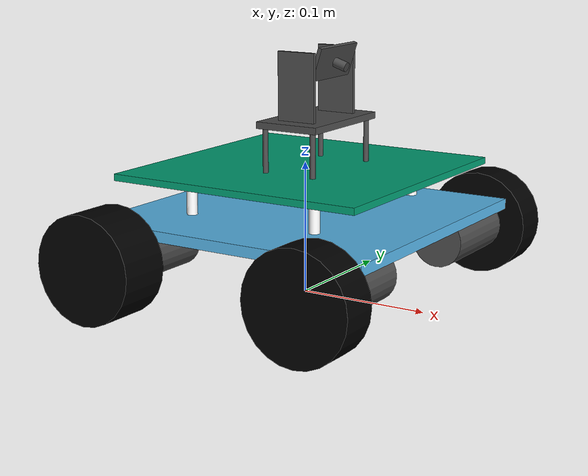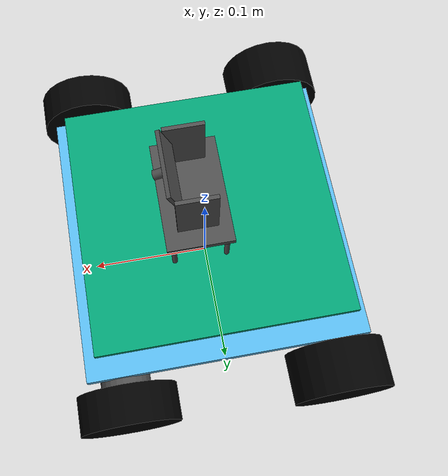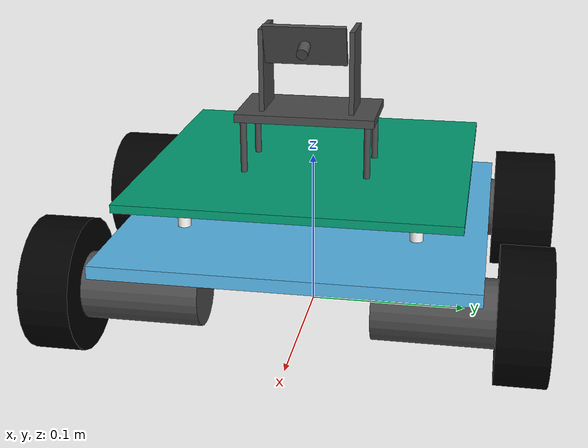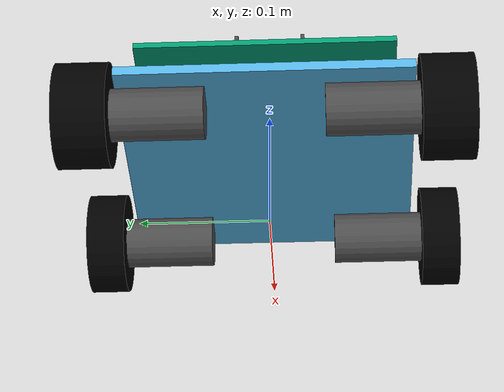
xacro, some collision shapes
<?xml version="1.0"?>
<robot xmlns:xacro="http://www.ros.org/wiki/xacro" name="roberto" >

    <xacro:arg name="model_dir" default="$(find roberto_models_kinetic)/models/platform"/>

    <!-- Import colors (for Rviz)-->
    <xacro:include filename="$(find roberto_models_kinetic)/models/materials.xacro" />

    <!-- Import robot -->
    <xacro:property name="model_dir" value="$(arg model_dir)/roberto_body"/>
    <xacro:include filename="$(find roberto_models_kinetic)/models/platform/roberto_body/body.xacro"/>
    <xacro:RobertoBody name="body" parent="base" mesh_collis="simplified" mesh_visual="detailed"/>   <!-- simplified detailed empty-->

    <!-- Import platform plugins -->
    <xacro:include filename="$(find roberto_models_kinetic)/models/platform/roberto_plugins.gazebo" />
    <xacro:RobertoMotorDrivePlugin />

    <!-- IMU -->
    <xacro:property name="model_dir" value="$(find roberto_models_kinetic)/models/sensors/IMU"/>
    <xacro:include filename="$(find roberto_models_kinetic)/models/sensors/IMU/imu.xacro"/>
    <xacro:imu_sensor name="imu9dof" parent="body_link" xyz="0.0 0.0 0.0685" rpy="0 0 0"/>

    <!-- Camera -->
    <xacro:include filename="$(find roberto_models_kinetic)/models/sensors/camera/camera.xacro"/>
    <xacro:cam name="usb_cam" parent="body_top" angle="${M_PI/10}" xyz="0 0.01 0.0375" rpy="0 0 ${M_PI/2}"/>

</robot>

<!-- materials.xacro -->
<robot>
	<material name="black">
	  <color rgba="0.0 0.0 0.0 1.0"/>
	</material>

	<material name="blue">
	  <color rgba="0.0 0.0 0.8 1.0"/>
	</material>

	<material name="green">
	  <color rgba="0.0 0.8 0.0 1.0"/>
	</material>

	<material name="grey">
	  <color rgba="0.3 0.3 0.3 1.0"/>
	</material>

	<material name="orange">
	  <color rgba="${255/255} ${108/255} ${10/255} 1.0"/>
	</material>

	<material name="brown">
	  <color rgba="${222/255} ${207/255} ${195/255} 1.0"/>
	</material>

	<material name="red">
	  <color rgba="0.8 0.0 0.0 1.0"/>
	</material>

	<material name="white">
	  <color rgba="1.0 1.0 1.0 1.0"/>
	</material>
</robot>

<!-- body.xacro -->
<robot xmlns:xacro="http://www.ros.org/wiki/xacro">

	<xacro:include filename="parameters.xacro"/>

	<xacro:include filename="platform_bottom.xacro"/>
	<xacro:include filename="platform_top.xacro"/>
	<xacro:include filename="wheel_mount.xacro"/>
	<xacro:include filename="wheel.xacro"/>
	<xacro:include filename="spacer.xacro"/>

	<xacro:macro name="RobertoBody" params="name parent mesh_collis mesh_visual" >

		<!-- Base link -->
		<link name="${parent}_link" />

		<!-- Chassis -->
	    <xacro:RobertoPlatformBottom name="${name}" parent="${parent}"/>
	    <xacro:RobertoPlatformTop name="${name}_top" parent="${name}"/>

	    <!-- Visual spacers in chassis -->
	    <xacro:Spacer name="spacer" parent="${name}" fb="F" lr="L" />
		<xacro:Spacer name="spacer" parent="${name}" fb="F" lr="R" />
		<xacro:Spacer name="spacer" parent="${name}" fb="B" lr="L" />
		<xacro:Spacer name="spacer" parent="${name}" fb="B" lr="R" />

	    <!-- Motor mounts, servos and gears -->
	    <xacro:WheelMount name="mount" parent="${name}" fb="B" lr="R" />
		<xacro:WheelMount name="mount" parent="${name}" fb="B" lr="L" />
		<xacro:WheelMount name="mount" parent="${name}" fb="F" lr="L" />
		<xacro:WheelMount name="mount" parent="${name}" fb="F" lr="R" />

		<!-- Wheels and motors -->
		<xacro:Wheel name="wheel" parent="mount" fb="F" lr="L" />
		<xacro:Wheel name="wheel" parent="mount" fb="F" lr="R" />
		<xacro:Wheel name="wheel" parent="mount" fb="B" lr="L" />
		<xacro:Wheel name="wheel" parent="mount" fb="B" lr="R" />

	</xacro:macro>
</robot>

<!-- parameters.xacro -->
<robot xmlns:xacro="http://www.ros.org/wiki/xacro">

	<xacro:property name="platformHeight" value="0.008"/>
	<xacro:property name="platformLength" value="0.225"/>
	<xacro:property name="platformWidth" value="0.225"/>
	<xacro:property name="platformMass" value="0.200"/>

	<xacro:property name="platformTopHeight" value="0.005"/>
	<xacro:property name="platformTopLength" value="0.200"/>
	<xacro:property name="platformTopWidth" value="0.200"/>
	<xacro:property name="platformTopMass" value="0.125"/>

	<xacro:property name="wheelRadius" value="0.04"/>
	<xacro:property name="wheelPos" value="0.05"/>

	<xacro:property name="frontWheelWidth" value="0.03"/>
	<xacro:property name="frontWheelMass" value="0.045"/>

	<xacro:property name="rearWheelWidth" value="0.04"/>
	<xacro:property name="rearWheelMass" value="0.050"/>

	<xacro:property name="motorMountRadius" value="0.02"/>
	<xacro:property name="motorMountLength" value="0.07"/>
	<xacro:property name="motorMountMass" value="0.190"/>
	<xacro:property name="motorMountPos" value="0.085"/>

	<xacro:property name="spacerRadius" value="0.004"/>
	<xacro:property name="spacerLength" value="0.022"/>
	<xacro:property name="spacerMass" value="0.005"/>
	<xacro:property name="spacerPosX" value="0.071"/>
	<xacro:property name="spacerPosY" value="0.052"/>
	<xacro:property name="spacerPosZ" value="0.079"/>

	<xacro:property name="cameraSize" value="0.05"/>
	<xacro:property name="cameraMass" value="0.100"/>

	<xacro:property name="servoLowerLimit" value="0.2618" />
    <xacro:property name="servoUpperLimit" value="1.57" />

</robot>

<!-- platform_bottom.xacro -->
<robot xmlns:xacro="http://www.ros.org/wiki/xacro">

	<xacro:include filename="$(find roberto_models_jade)/models/inertia_tensors.xacro"/>

	<xacro:macro name="RobertoPlatformBottom" params="name parent mesh_collis:=^|simplified mesh_visual:=^|detailed model_dir:=^">

		<xacro:property name="ParentLink2ThisLink"> <!--parent link to this joint tf-->
			<origin xyz="0 0 0" rpy="0 0 -${M_PI/2}"/>
	    </xacro:property>

	    <xacro:property name="ThisLink2Inert"> <!--this link 2 inertial center tf, mass data-->
			<box_inertial x="${platformLength}" y="${platformWidth}"  z="${platformHeight}" mass="${platformMass}" />
	    </xacro:property>

	    <xacro:property name="ThisLink2STL"> <!--this link 2 mesh center tf, file-->
			<origin xyz="${-platformLength/2} ${-platformWidth/2} 0.06" rpy="0 0 0"/>
			<geometry> <mesh filename="file://${model_dir}/meshes/platform.dae"/> </geometry>
	    </xacro:property>

	    <xacro:property name="ThisLink2XML"> <!--this link 2 simple mesh center tf, file-->
			<origin xyz="0 0 0.06" rpy="0 0 0"/>
			<geometry> <box size="${platformLength} ${platformWidth} ${platformHeight}" /> </geometry>
	    </xacro:property>

	    <!-- choosing the appropriate collision and visual mesh -->
	    <xacro:property name="ThisVisual"> <box size="0.0001 0.0001 0.0001" /> </xacro:property><!--no mesh-->
	    <xacro:property name="ThisCollis"> <box size="0.0001 0.0001 0.0001" /> </xacro:property><!--no mesh-->
	    <xacro:if value="${mesh_visual ==   'detailed'}"> <xacro:property name="ThisVisual">  <xacro:insert_block name="ThisLink2STL"/> </xacro:property> </xacro:if><!--detailed stl mesh-->
	    <xacro:if value="${mesh_collis ==   'detailed'}"> <xacro:property name="ThisCollis">  <xacro:insert_block name="ThisLink2STL"/> </xacro:property> </xacro:if><!--detailed stl mesh-->
	    <xacro:if value="${mesh_visual == 'simplified'}"> <xacro:property name="ThisVisual">  <xacro:insert_block name="ThisLink2XML"/> </xacro:property> </xacro:if><!--minimalist mesh-->
	    <xacro:if value="${mesh_collis == 'simplified'}"> <xacro:property name="ThisCollis">  <xacro:insert_block name="ThisLink2XML"/> </xacro:property> </xacro:if><!--minimalist mesh-->

	    <!-- joint and link definition -->
	    <joint name="${parent}2${name}_joint" type="fixed">
			<parent link="${parent}_link"/>
			<child  link="${name}_link" />
			<xacro:insert_block name="ParentLink2ThisLink" />
	    </joint>

	    <link name="${name}_link">
			<xacro:insert_block name="ThisLink2Inert"/>
			<visual>    <xacro:insert_block name="ThisVisual"/> </visual>
			<collision> <xacro:insert_block name="ThisCollis"/> </collision>
	    </link>

	    <gazebo reference="${name}_link">
	    </gazebo>

	</xacro:macro>
</robot>

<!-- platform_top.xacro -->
<robot xmlns:xacro="http://www.ros.org/wiki/xacro">

	<xacro:include filename="$(find roberto_models_jade)/models/inertia_tensors.xacro"/>

	<xacro:macro name="RobertoPlatformTop" params="name parent mesh_collis:=^|simplified mesh_visual:=^|detailed model_dir:=^">

		<xacro:property name="ParentLink2ThisLink"> <!--parent link to this joint tf-->
			<origin xyz="0 0 ${spacerLength+spacerPosZ-platformTopHeight-0.001}" rpy="0 0 0"/>
	    </xacro:property>

	    <xacro:property name="ThisLink2Inert"> <!--this link 2 inertial center tf, mass data-->
			<box_inertial x="${platformTopWidth}" y="${platformTopLength}"  z="${platformTopHeight}" mass="${platformTopMass}" />
	    </xacro:property>

	    <xacro:property name="ThisLink2STL"> <!--this link 2 mesh center tf, file-->
			<origin xyz="${platformTopWidth/2} -${platformTopLength/2} 0" rpy="0 ${pi} 0"/>
			<geometry> <mesh filename="file://${model_dir}/meshes/platform_top.dae"/> </geometry>
	    </xacro:property>

	    <xacro:property name="ThisLink2XML"> <!--this link 2 simple mesh center tf, file-->
			<origin xyz="0 0 0" rpy="0 ${pi} 0"/>
			<geometry> <box size="${platformTopWidth} ${platformTopLength} ${platformTopHeight}" /> </geometry>
	    </xacro:property>

	    <!-- choosing the appropriate collision and visual mesh -->
	    <xacro:property name="ThisVisual"> <box size="0.0001 0.0001 0.0001" /> </xacro:property><!--no mesh-->
	    <xacro:property name="ThisCollis"> <box size="0.0001 0.0001 0.0001" /> </xacro:property><!--no mesh-->
	    <xacro:if value="${mesh_visual ==   'detailed'}"> <xacro:property name="ThisVisual">  <xacro:insert_block name="ThisLink2STL"/> </xacro:property> </xacro:if><!--detailed stl mesh-->
	    <xacro:if value="${mesh_collis ==   'detailed'}"> <xacro:property name="ThisCollis">  <xacro:insert_block name="ThisLink2STL"/> </xacro:property> </xacro:if><!--detailed stl mesh-->
	    <xacro:if value="${mesh_visual == 'simplified'}"> <xacro:property name="ThisVisual">  <xacro:insert_block name="ThisLink2XML"/> </xacro:property> </xacro:if><!--minimalist mesh-->
	    <xacro:if value="${mesh_collis == 'simplified'}"> <xacro:property name="ThisCollis">  <xacro:insert_block name="ThisLink2XML"/> </xacro:property> </xacro:if><!--minimalist mesh-->

	    <!-- joint and link definition -->
	    <joint name="${parent}2${name}_joint" type="fixed">
			<parent link="${parent}_link"/>
			<child  link="${name}_link" />
			<xacro:insert_block name="ParentLink2ThisLink" />
	    </joint>

	    <link name="${name}_link">
			<xacro:insert_block name="ThisLink2Inert"/>
			<visual>    <xacro:insert_block name="ThisVisual"/> </visual>
			<collision> <xacro:insert_block name="ThisCollis"/> </collision>
	    </link>

	    <gazebo reference="${name}_link">
	    </gazebo>

	</xacro:macro>
</robot>

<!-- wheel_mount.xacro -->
<robot xmlns:xacro="http://www.ros.org/wiki/xacro">

  <xacro:include filename="$(find roberto_models_jade)/models/inertia_tensors.xacro"/>

  <xacro:macro name="WheelMount" params="name parent fb lr mesh_collis:=^|simplified mesh_visual:=^|detailed model_dir:=^">

    <!-- Selecting origin position -->
    <xacro:property name="adjust" value="0" />
    <xacro:property name="tX" value="1" />
    <xacro:property name="tY" value="1" />
    <xacro:if value="${lr == 'L'}"> <xacro:property name="tX" value="-1" /> </xacro:if>
    <xacro:if value="${fb == 'B'}"> <xacro:property name="tY" value="-1" /> <xacro:property name="adjust" value="0.01" /> </xacro:if>

    <!-- Select servo limits -->
    <xacro:property name="ll" value="${servoLowerLimit}"/>
    <xacro:property name="ul" value="${servoUpperLimit}"/>
    <xacro:if value="${fb == 'B' and lr == 'L'}"> <xacro:property name="ll" value="-${servoLowerLimit}" /> <xacro:property name="ul" value="${servoUpperLimit}" /> </xacro:if>
    <xacro:if value="${fb == 'B' and lr == 'R'}"> <xacro:property name="ll" value="-${servoUpperLimit}" /> <xacro:property name="ul" value="${servoLowerLimit}" /> </xacro:if>
    <xacro:if value="${fb == 'F' and lr == 'L'}"> <xacro:property name="ll" value="-${servoUpperLimit}" /> <xacro:property name="ul" value="${servoLowerLimit}" /> </xacro:if>
    <xacro:if value="${fb == 'F' and lr == 'R'}"> <xacro:property name="ll" value="-${servoLowerLimit}" /> <xacro:property name="ul" value="${servoUpperLimit}" /> </xacro:if>

    <xacro:property name="ParentLink2ThisLink"> <!--parent link to this joint tf-->
      <origin xyz="${motorMountPos*tX} ${motorMountPos*tY} ${wheelRadius}" rpy="0 0 0" />
      <axis xyz="0 0 1" rpy="0 0 0" />
      <limit effort="10.0" velocity="4" lower="${ll}" upper="${ul}"/>
    </xacro:property>

    <xacro:property name="ThisLink2Inert"> <!--this link 2 inertial center tf, mass data-->
      <cylinder_inertial_with_origin radius="${motorMountRadius}" length="${motorMountLength+adjust}" mass="${motorMountMass}" > <origin xyz="0 0 0" rpy="0 ${pi/2} 0" /> </cylinder_inertial_with_origin>
    </xacro:property>

    <xacro:property name="ThisLink2STL"> <!--this link 2 mesh center tf, file-->
      <origin xyz="0 0 0" rpy="0 ${pi/2} 0"/>
      <geometry> <mesh filename="file://${model_dir}/meshes/platform_top.dae"/> </geometry>
      <material name="grey"/>
    </xacro:property>

    <xacro:property name="ThisLink2XML"> <!--this link 2 simple mesh center tf, file-->
      <origin xyz="0 0 0" rpy="0 ${pi/2} 0"/>
      <geometry> <cylinder length="${motorMountLength+adjust}" radius="${motorMountRadius}"/> </geometry>
      <material name="grey"/>
    </xacro:property>

    <!-- choosing the appropriate collision and visual mesh -->
    <xacro:property name="ThisVisual"> <box size="0.0001 0.0001 0.0001" /> </xacro:property><!--no mesh-->
    <xacro:property name="ThisCollis"> <box size="0.0001 0.0001 0.0001" /> </xacro:property><!--no mesh-->
    <xacro:if value="${mesh_visual ==   'detailed'}"> <xacro:property name="ThisVisual">  <xacro:insert_block name="ThisLink2XML"/> </xacro:property> </xacro:if><!--detailed stl mesh-->
    <xacro:if value="${mesh_collis ==   'detailed'}"> <xacro:property name="ThisCollis">  <xacro:insert_block name="ThisLink2XML"/> </xacro:property> </xacro:if><!--detailed stl mesh-->
    <xacro:if value="${mesh_visual == 'simplified'}"> <xacro:property name="ThisVisual">  <xacro:insert_block name="ThisLink2XML"/> </xacro:property> </xacro:if><!--minimalist mesh-->
    <xacro:if value="${mesh_collis == 'simplified'}"> <xacro:property name="ThisCollis">  <xacro:insert_block name="ThisLink2XML"/> </xacro:property> </xacro:if><!--minimalist mesh-->

    <!-- joint and link definition -->
    <joint name="${parent}2${name}${fb}${lr}_joint" type="revolute">
      <parent link="${parent}_link"/>
      <child  link="${name}${fb}${lr}_link" />
      <xacro:insert_block name="ParentLink2ThisLink" />
    </joint>

    <link name="${name}${fb}${lr}_link">
      <xacro:insert_block name="ThisLink2Inert"/>
      <visual>    <xacro:insert_block name="ThisVisual"/> </visual>
      <collision> <xacro:insert_block name="ThisCollis"/> </collision>
    </link>

    <gazebo reference="${name}${fb}${lr}_link">
      <mu1>5.9</mu1>
      <mu2>5.9</mu2>
      <kp>1000000.0</kp>
      <kd>100.0</kd>
      <minDepth>0.001</minDepth>
      <maxVel>1.0</maxVel>
      <material>Gazebo/Grey</material>
    </gazebo>

  </xacro:macro>
</robot>

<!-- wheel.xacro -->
<robot xmlns:xacro="http://www.ros.org/wiki/xacro">

  <xacro:include filename="$(find roberto_models_jade)/models/inertia_tensors.xacro"/>

  <xacro:macro name="Wheel" params="name parent fb lr mesh_collis:=^|simplified mesh_visual:=^|detailed model_dir:=^">

    <!-- Selecting origin position -->
    <xacro:property name="mass" value="${frontWheelMass}" />
    <xacro:property name="width" value="${frontWheelWidth}" />
    <xacro:property name="tY" value="1" />
    <xacro:if value="${lr ==   'L'}"> <xacro:property name="tY" value="-1" /> </xacro:if>
    <xacro:if value="${fb ==   'B'}"> <xacro:property name="mass" value="${rearWheelMass}" /> <xacro:property name="width" value="${rearWheelWidth}" /> </xacro:if>

    <xacro:property name="ParentLink2ThisLink"> <!--parent link to this joint tf-->
      <origin xyz="${wheelPos*tY} 0 0" rpy="0 0 0" />
      <axis xyz="1 0 0" rpy="0 0 0" />
    </xacro:property>

    <xacro:property name="ThisLink2Inert"> <!--this link 2 inertial center tf, mass data-->
      <cylinder_inertial_with_origin radius="${wheelRadius}" length="${width}" mass="${mass}" > <origin xyz="0 0 0" rpy="0 ${pi/2} 0" /> </cylinder_inertial_with_origin>
    </xacro:property>

    <xacro:property name="ThisLink2STL"> <!--this link 2 mesh center tf, file-->
      <origin xyz="0.02 -0.03 0" rpy="0 ${pi/2} 0"/>
      <geometry> <mesh filename="file://${model_dir}/meshes/platform_top.dae"/> </geometry>
      <material name="black"/>
    </xacro:property>

    <xacro:property name="ThisLink2XML"> <!--this link 2 simple mesh center tf, file-->
      <origin xyz="0 0 0" rpy="0 ${pi/2} 0"/>
      <geometry> <cylinder length="${width}" radius="${wheelRadius}"/> </geometry>
      <material name="black"/>
    </xacro:property>

    <!-- choosing the appropriate collision and visual mesh -->
    <xacro:property name="ThisVisual"> <box size="0.0001 0.0001 0.0001" /> </xacro:property><!--no mesh-->
    <xacro:property name="ThisCollis"> <box size="0.0001 0.0001 0.0001" /> </xacro:property><!--no mesh-->
    <xacro:if value="${mesh_visual ==   'detailed'}"> <xacro:property name="ThisVisual">  <xacro:insert_block name="ThisLink2XML"/> </xacro:property> </xacro:if><!--detailed stl mesh-->
    <xacro:if value="${mesh_collis ==   'detailed'}"> <xacro:property name="ThisCollis">  <xacro:insert_block name="ThisLink2XML"/> </xacro:property> </xacro:if><!--detailed stl mesh-->
    <xacro:if value="${mesh_visual == 'simplified'}"> <xacro:property name="ThisVisual">  <xacro:insert_block name="ThisLink2XML"/> </xacro:property> </xacro:if><!--minimalist mesh-->
    <xacro:if value="${mesh_collis == 'simplified'}"> <xacro:property name="ThisCollis">  <xacro:insert_block name="ThisLink2XML"/> </xacro:property> </xacro:if><!--minimalist mesh-->

    <!-- joint and link definition -->
    <joint name="${parent}${fb}${lr}2${name}${fb}${lr}_joint" type="continuous">
      <parent link="${parent}${fb}${lr}_link"/>
      <child  link="${name}${fb}${lr}_link" />
      <xacro:insert_block name="ParentLink2ThisLink" />
    </joint>

    <link name="${name}${fb}${lr}_link">
      <xacro:insert_block name="ThisLink2Inert"/>
      <visual>    <xacro:insert_block name="ThisVisual"/> </visual>
      <collision> <xacro:insert_block name="ThisCollis"/> </collision>
    </link>

    <gazebo reference="${name}${fb}${lr}_link">
      <mu1>5.9</mu1>

      <kp>1000000.0</kp>
      <kd>100.0</kd>
      <minDepth>0.001</minDepth>
      <maxVel>1.0</maxVel>
      <material>Gazebo/Black</material>
    </gazebo>

  </xacro:macro>
</robot>

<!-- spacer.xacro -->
<robot xmlns:xacro="http://www.ros.org/wiki/xacro">

  <xacro:include filename="$(find roberto_models_jade)/models/inertia_tensors.xacro"/>

  <xacro:macro name="Spacer" params="name parent fb lr mesh_collis:=^|simplified mesh_visual:=^|detailed model_dir:=^">

    <!-- Selecting origin position -->
    <xacro:property name="tX" value="1" />
    <xacro:property name="tY" value="1" />
    <xacro:if value="${fb ==   'B'}"> <xacro:property name="tY" value="-1" /> </xacro:if>
    <xacro:if value="${lr ==   'L'}"> <xacro:property name="tX" value="-1" /> </xacro:if>

    <xacro:property name="ParentLink2ThisLink"> <!--parent link to this joint tf-->
      <axis xyz="0 0 1"/>
      <origin xyz="${spacerPosX*tX} ${spacerPosY*tY} ${spacerPosZ}" rpy="0 0 0" />
    </xacro:property>

    <xacro:property name="ThisLink2Inert"> <!--this link 2 inertial center tf, mass data-->
      <cylinder_inertial radius="${spacerRadius}" length="${spacerLength}" mass="${spacerMass}" />
    </xacro:property>

    <xacro:property name="ThisLink2STL"> <!--this link 2 mesh center tf, file-->
      <origin xyz="0.02 -0.03 0" rpy="0 ${pi} 0"/>
      <geometry> <mesh filename="file://${model_dir}/meshes/platform_top.dae"/> </geometry>
      <material name="white"> <color rgba="1 1 1 1"/> </material>
    </xacro:property>

    <xacro:property name="ThisLink2XML"> <!--this link 2 simple mesh center tf, file-->
      <origin xyz="0 0 0" rpy="0 0 0"/>
      <geometry> <cylinder length="${spacerLength}" radius="${spacerRadius}"/> </geometry>
      <material name="white"> <color rgba="1 1 1 1"/> </material>
    </xacro:property>

    <!-- choosing the appropriate collision and visual mesh -->
    <xacro:property name="ThisVisual"> <box size="0.0001 0.0001 0.0001" /> </xacro:property><!--no mesh-->
    <xacro:property name="ThisCollis"> <box size="0.0001 0.0001 0.0001" /> </xacro:property><!--no mesh-->
    <xacro:if value="${mesh_visual ==   'detailed'}"> <xacro:property name="ThisVisual">  <xacro:insert_block name="ThisLink2XML"/> </xacro:property> </xacro:if><!--detailed stl mesh-->
    <xacro:if value="${mesh_collis ==   'detailed'}"> <xacro:property name="ThisCollis">  <xacro:insert_block name="ThisLink2XML"/> </xacro:property> </xacro:if><!--detailed stl mesh-->
    <xacro:if value="${mesh_visual == 'simplified'}"> <xacro:property name="ThisVisual">  <xacro:insert_block name="ThisLink2XML"/> </xacro:property> </xacro:if><!--minimalist mesh-->
    <xacro:if value="${mesh_collis == 'simplified'}"> <xacro:property name="ThisCollis">  <xacro:insert_block name="ThisLink2XML"/> </xacro:property> </xacro:if><!--minimalist mesh-->

    <!-- joint and link definition -->
    <joint name="${parent}2${name}${fb}${lr}_joint" type="fixed">
      <parent link="${parent}_link"/>
      <child  link="${name}${fb}${lr}_link" />
      <xacro:insert_block name="ParentLink2ThisLink" />
    </joint>

    <link name="${name}${fb}${lr}_link">
      <xacro:insert_block name="ThisLink2Inert"/>
      <visual>    <xacro:insert_block name="ThisVisual"/> </visual>
      <collision> <xacro:insert_block name="ThisCollis"/> </collision>
    </link>

    <gazebo reference="${name}${fb}${lr}_link">
      <material>Gazebo/White</material>
      <selfCollide>false</selfCollide>
    </gazebo>

  </xacro:macro>
</robot>

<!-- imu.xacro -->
<robot xmlns:xacro="http://www.ros.org/wiki/xacro">

<xacro:macro name="imu_sensor" params="name parent xyz rpy model_dir:=^" >

    <joint name="${parent}_${name}_joint" type="fixed">
      <axis xyz="0 0 1" />
      <origin xyz="${xyz}" rpy="${rpy}"/>
      <parent link="${parent}"/>
      <child link="${name}"/>
    </joint>

    <link name="${name}">
      <collision>
        <origin xyz="0 0 0" rpy="0 0 0"/>
        <geometry>
          <box size="0.003 0.003 0.001"/>
        </geometry>
      </collision>
      <visual>
        <origin xyz="0 0 0" rpy="0 0 0"/>
        <geometry>
          <box size="0.003 0.003 0.001" />
        </geometry>
      </visual>
      <inertial>
        <mass value="1e-6" />
        <origin xyz="0 0 0" rpy="0 0 0"/>
        <inertia ixx="1e-9" ixy="0" ixz="0" iyy="1e-9" iyz="0" izz="1e-9" />
      </inertial>
    </link>

    <xacro:property name="imu_noise_lin">
		<noise type="tuw_advanced">
		    <meanWhiteNoise   value="0"/>
		    <sigmaWhiteNoise  value="0.003"/>
		    <tauCutOff        value="${1/250}"/>
		    <sigmaRandWalk    value="${9.8 * 0.00005}"/>
		    <sigmaGaussMarkov value="${9.8 * 0.002}"/>
		    <freqGaussMarkov  value="${1/100}"/>
		</noise>
	    </xacro:property>
	    <xacro:property name="imu_noise_ang">
		<noise type="tuw_advanced">
		    <meanWhiteNoise   value="0"/>
		    <sigmaWhiteNoise  value="0.00024"/>
		    <tauCutOff        value="${1/133}"/>
		    <sigmaRandWalk    value="${1/180 * 0.00001}"/>
		    <sigmaGaussMarkov value="${1/180 * 0.0003}"/>
		    <freqGaussMarkov  value="${1/40}"/>
		</noise>
	    </xacro:property>
	    <xacro:property name="mag_noise">
		<noise type="tuw_advanced">
		    <meanWhiteNoise   value="0"/>
		    <sigmaWhiteNoise  value="0.00024"/>
		    <tauCutOff        value="${1/110}"/>
		    <sigmaRandWalk    value="${1e-4 * 0.000006}"/>
		    <sigmaGaussMarkov value="${1e-4 * 0.00003}"/>
		    <freqGaussMarkov  value="${1/70}"/>
		</noise>
    </xacro:property>

    <gazebo>
		<plugin name="gazebo_ros_imu9dof" filename="libroberto_gazebo_ros_imu9dof.so" >
		    <rosDebugLevel>Debug</rosDebugLevel>
		    <robotNamespace></robotNamespace>
		    <updateRate>50.0</updateRate>
		    <alwaysOn>true</alwaysOn>

		    <origin xyz="${xyz}" rpy="${rpy}"/>
		    <link_name>${name}</link_name>
		    <imu>
				<topic>${name}/imu</topic>
				<angular_velocity>
					<xacro:insert_block name="imu_noise_ang"/>
				</angular_velocity>
				<linear_acceleration>
					<xacro:insert_block name="imu_noise_lin"/>
				</linear_acceleration>
		    </imu>
		    <magnetometer>
				<topic>${name}/mag</topic>
				<magnetic_field>
					<xacro:insert_block name="mag_noise"/>
				</magnetic_field>
		    </magnetometer>
		</plugin>
    </gazebo>
</xacro:macro>

</robot>

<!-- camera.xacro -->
<robot xmlns:xacro="http://www.ros.org/wiki/xacro">

<!-- Camera -->
<xacro:macro name="cam" params="name parent angle xyz rpy">

  <joint name="${parent}_${name}_base_joint" type="fixed">
      <origin xyz="${xyz}" rpy="${rpy}"/>
      <parent link="${parent}_link"/>
      <child link="${name}_base"/>
  </joint>

  <joint name="${name}_base_${name}_spacer1_joint" type="fixed">
      <origin xyz="0.02 0.038 -0.0175" rpy="0 0 0"/>
      <parent link="${name}_base"/>
      <child link="${name}_spacer1"/>
  </joint>

  <joint name="${name}_base_${name}_spacer2_joint" type="fixed">
      <origin xyz="-0.02 0.038 -0.0175" rpy="0 0 0"/>
      <parent link="${name}_base"/>
      <child link="${name}_spacer2"/>
  </joint>

  <joint name="${name}_base_${name}_spacer3_joint" type="fixed">
      <origin xyz="0.02 -0.038 -0.0175" rpy="0 0 0"/>
      <parent link="${name}_base"/>
      <child link="${name}_spacer3"/>
  </joint>

  <joint name="${name}_base_${name}_spacer4_joint" type="fixed">
      <origin xyz="-0.02 -0.038 -0.0175" rpy="0 0 0"/>
      <parent link="${name}_base"/>
      <child link="${name}_spacer4"/>
  </joint>

  <joint name="${name}_base_${name}_side_left_joint" type="fixed">
      <origin xyz="0 0.0275 0.0275" rpy="${M_PI/2} ${M_PI/2} 0"/>
      <parent link="${name}_base"/>
      <child link="${name}_side_left"/>
  </joint>

  <joint name="${name}_base_${name}_side_right_joint" type="fixed">
      <origin xyz="0 -0.0275 0.0275" rpy="${M_PI/2} ${M_PI/2} 0"/>
      <parent link="${name}_base"/>
      <child link="${name}_side_right"/>
  </joint>

  <joint name="${name}_side_right_${name}_mount_joint" type="fixed">
      <origin xyz="-0.02125 0 -0.027" rpy="${M_PI/2 + angle} ${M_PI/2} 0"/>
      <parent link="${name}_side_right"/>
      <child link="${name}_mount"/>
  </joint>

  <joint name="${name}_mount_${name}_cam_joint" type="fixed">
      <origin xyz="0 0 -0.0215" rpy="0 ${M_PI} 0"/>
      <parent link="${name}_mount"/>
      <child link="${name}"/>
  </joint>

  <link name="${name}_base">
    <box_inertial x="0.05" y="0.085" z="0.005" mass="0.015" />
    <visual>
      <origin xyz="0 0 0" rpy="0 0 0" />
      <geometry>
        <box size="0.05 0.085 0.005" />
      </geometry>
      <material name="grey"/>
    </visual>
    <collision>
      <origin xyz="0 0 0" rpy="0 0 0" />
      <geometry>
        <box size="0.05 0.085 0.005" />
      </geometry>
    </collision>
  </link>

  <link name="${name}_spacer1">
    <cylinder_inertial length="0.035" radius="0.002" mass="0.005" />
    <visual>
      <origin xyz="0 0 0" rpy="0 0 0" />
      <geometry>
        <cylinder length="0.035" radius="0.002" />
      </geometry>
      <material name="grey"/>
    </visual>
    <collision>
      <origin xyz="0 0 0" rpy="0 0 0" />
      <geometry>
        <cylinder length="0.035" radius="0.002" />
      </geometry>
    </collision>
  </link>

  <link name="${name}_spacer2">
    <cylinder_inertial length="0.035" radius="0.002" mass="0.005" />
    <visual>
      <origin xyz="0 0 0" rpy="0 0 0" />
      <geometry>
        <cylinder length="0.035" radius="0.002" />
      </geometry>
      <material name="grey"/>
    </visual>
    <collision>
      <origin xyz="0 0 0" rpy="0 0 0" />
      <geometry>
        <cylinder length="0.035" radius="0.002" />
      </geometry>
    </collision>
  </link>

  <link name="${name}_spacer3">
    <cylinder_inertial length="0.035" radius="0.002" mass="0.005" />
    <visual>
      <origin xyz="0 0 0" rpy="0 0 0" />
      <geometry>
        <cylinder length="0.035" radius="0.002" />
      </geometry>
      <material name="grey"/>
    </visual>
    <collision>
      <origin xyz="0 0 0" rpy="0 0 0" />
      <geometry>
        <cylinder length="0.035" radius="0.002" />
      </geometry>
    </collision>
  </link>

  <link name="${name}_spacer4">
    <cylinder_inertial length="0.035" radius="0.002" mass="0.005" />
    <visual>
      <origin xyz="0 0 0" rpy="0 0 0" />
      <geometry>
        <cylinder length="0.035" radius="0.002" />
      </geometry>
      <material name="grey"/>
    </visual>
    <collision>
      <origin xyz="0 0 0" rpy="0 0 0" />
      <geometry>
        <cylinder length="0.035" radius="0.002" />
      </geometry>
    </collision>
  </link>

  <link name="${name}_side_left">
    <box_inertial x="0.05" y="0.03" z="0.003" mass="0.01" />
    <visual>
      <origin xyz="0 0 0" rpy="0 0 0" />
      <geometry>
        <box size="0.05 0.03 0.003" />
      </geometry>
      <material name="grey"/>
    </visual>
    <collision>
      <origin xyz="0 0 0" rpy="0 0 0" />
      <geometry>
        <box size="0.05 0.03 0.003" />
      </geometry>
    </collision>
  </link>

  <link name="${name}_side_right">
    <box_inertial x="0.05" y="0.03" z="0.003" mass="0.01" />
    <visual>
      <origin xyz="0 0 0" rpy="0 0 0" />
      <geometry>
        <box size="0.05 0.03 0.003" />
      </geometry>
      <material name="grey"/>
    </visual>
    <collision>
      <origin xyz="0 0 0" rpy="0 0 0" />
      <geometry>
        <box size="0.05 0.03 0.003" />
      </geometry>
    </collision>
  </link>

  <link name="${name}_mount">
    <box_inertial x="0.05" y="0.025" z="0.003" mass="0.01" />
    <visual>
      <origin xyz="0 0 -0.015" rpy="0 0 0" />
      <geometry>
        <box size="0.05 0.025 0.003" />
      </geometry>
      <material name="grey"/>
    </visual>
    <collision>
      <origin xyz="0 0 -0.015" rpy="0 0 0" />
      <geometry>
        <box size="0.05 0.025 0.003" />
      </geometry>
    </collision>
  </link>

  <!-- Camera -->
  <link name="${name}">
    <cylinder_inertial length="0.01" radius="0.0035" mass="${cameraMass}" />
    <visual>
      <origin xyz="0 0 0" rpy="0 0 0"/>
      <geometry>
        <cylinder radius="0.0035" length="0.01"/>
      </geometry>
      <material name="grey"/>
    </visual>
    <collision>
      <origin xyz="0 0 0" rpy="0 0 0"/>
      <geometry>
        <cylinder radius="0.0035" length="0.01"/>
      </geometry>
    </collision>
  </link>
  <gazebo reference="${name}">
    <material value="Gazebo/Grey"/>
  </gazebo>

  <gazebo reference="${name}">
    <sensor type="camera" name="camera1">
      <update_rate>60.0</update_rate>
      <camera name="head">
        <pose>0 0 0 0 -${M_PI/2}  ${M_PI/2}</pose>
        <horizontal_fov>${M_PI*0.37777777777}</horizontal_fov>
        <image>
          <width>320</width>
          <height>240</height>
          <format>L8</format>
        </image>
        <clip>
          <near>0.02</near>
          <far>300</far>
        </clip>
        <noise>
          <type>gaussian</type>
          <!-- Noise is sampled independently per pixel on each frame.
               That pixel's noise value is added to each of its color
               channels, which at that point lie in the range [0,1]. -->
          <mean>0.0</mean>
          <stddev>0.007</stddev>
        </noise>
      </camera>
      <plugin name="camera_controller" filename="libgazebo_ros_camera.so">
        <robotNamespace></robotNamespace>
        <alwaysOn>true</alwaysOn>
        <updateRate>0.0</updateRate>
        <cameraName>${name}</cameraName>
        <imageTopicName>image_raw</imageTopicName>
        <cameraInfoTopicName>camera_info</cameraInfoTopicName>
        <frameName>${name}</frameName>
        <hackBaseline>0.00</hackBaseline>
        <distortionK1>0.0</distortionK1>
        <distortionK2>0.0</distortionK2>
        <distortionK3>0.0</distortionK3>
        <distortionT1>0.0</distortionT1>
        <distortionT2>0.0</distortionT2>
      </plugin>
    </sensor>
  </gazebo>

</xacro:macro>
</robot>
